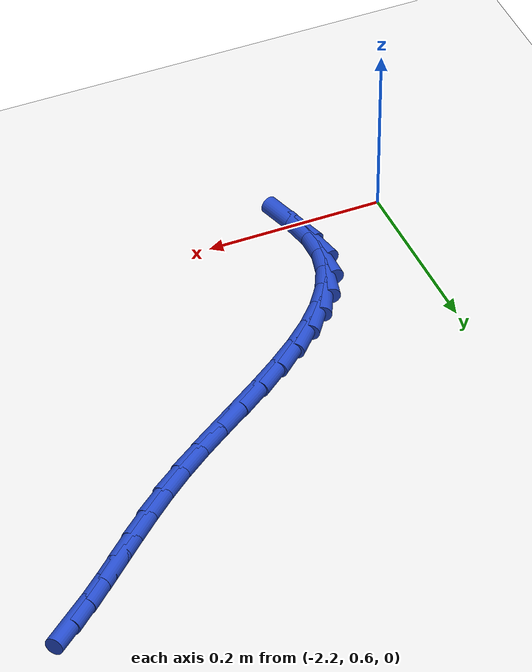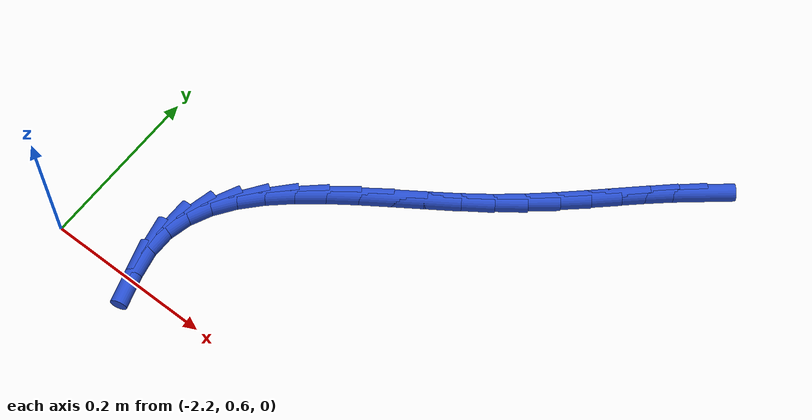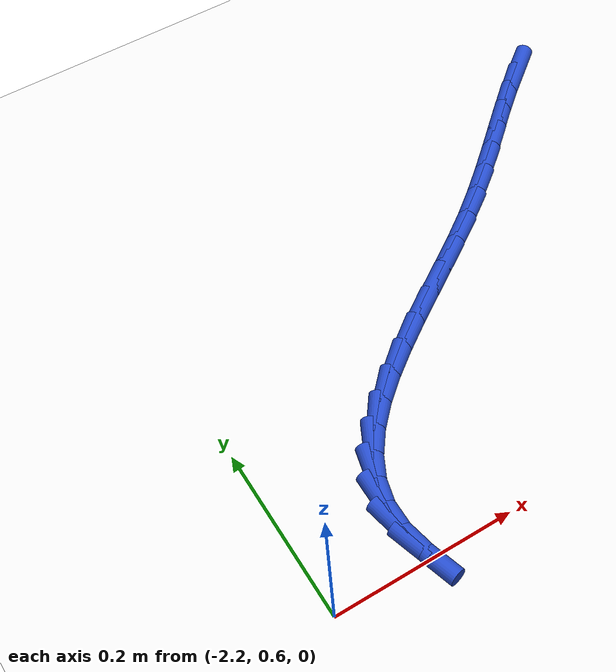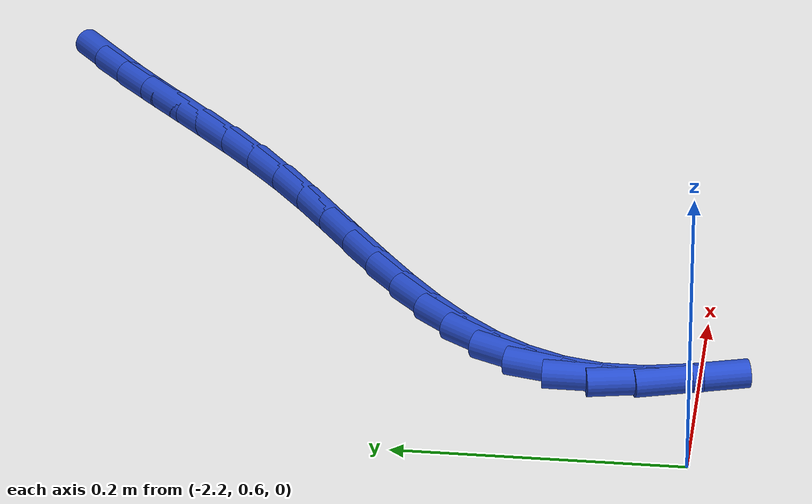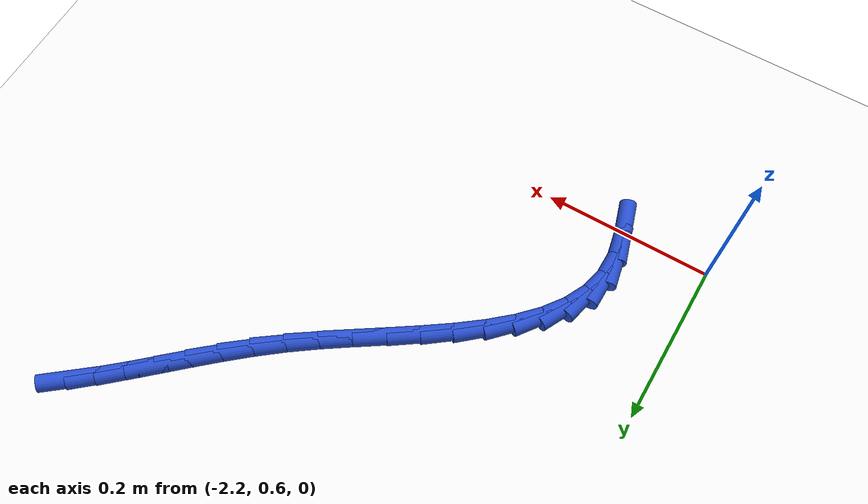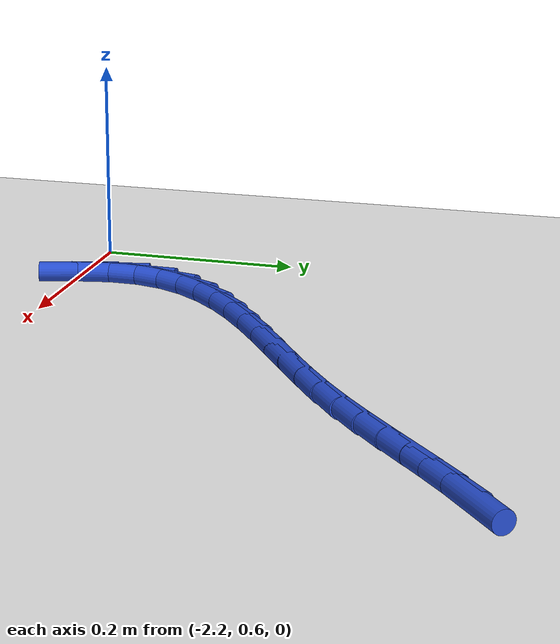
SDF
<sdf version="1.6">
 <world name="default">
  <model name="ground_plane">
   <static>1</static>
   <link name="link">
    <collision name="collision">
     <geometry><plane><normal>0 0 1</normal><size>100 100</size></plane></geometry>
     <surface><friction><ode><mu>100</mu><mu2>50</mu2></ode></friction></surface>
    </collision>
    <visual name="visual">
     <cast_shadows>0</cast_shadows>
     <geometry><plane><normal>0 0 1</normal><size>100 100</size></plane></geometry>
     <material>
      <script><uri>file://media/materials/scripts/gazebo.material</uri><name>Gazebo/WhiteGlow</name></script>
     </material>
    </visual>
   </link>
  </model>
  <model name="line">
   <link name="link_80">
    <pose>-1.65694661246185 1.07331122320994 0.01 0 1.57 0.680623803004864</pose>
    <collision name="collision">
     <geometry><cylinder><radius>0.01</radius><length>0.08</length></cylinder></geometry>
    </collision>
    <visual name="visual">
     <material>
      <script><name>Gazebo/Blue</name><uri>file://media/materials/scripts/gazebo.material</uri></script>
     </material>
     <geometry><cylinder><radius>0.01</radius><length>0.08</length></cylinder></geometry>
    </visual>
   </link>
   <link name="link_81">
    <pose>-1.6812501632050776 1.053632793120384 0.01 0 1.57 0.7168973606551147</pose>
    <collision name="collision">
     <geometry><cylinder><radius>0.01</radius><length>0.08</length></cylinder></geometry>
    </collision>
    <visual name="visual">
     <material>
      <script><name>Gazebo/Blue</name><uri>file://media/materials/scripts/gazebo.material</uri></script>
     </material>
     <geometry><cylinder><radius>0.01</radius><length>0.08</length></cylinder></geometry>
    </visual>
   </link>
   <link name="link_82">
    <pose>-1.7053035607349547 1.0326680096049548 0.01 0 1.57 0.7370292278490008</pose>
    <collision name="collision">
     <geometry><cylinder><radius>0.01</radius><length>0.08</length></cylinder></geometry>
    </collision>
    <visual name="visual">
     <material>
      <script><name>Gazebo/Blue</name><uri>file://media/materials/scripts/gazebo.material</uri></script>
     </material>
     <geometry><cylinder><radius>0.01</radius><length>0.08</length></cylinder></geometry>
    </visual>
   </link>
   <link name="link_83">
    <pose>-1.7294626831557167 1.0107398214093875 0.01 0 1.57 0.7419394512219598</pose>
    <collision name="collision">
     <geometry><cylinder><radius>0.01</radius><length>0.08</length></cylinder></geometry>
    </collision>
    <visual name="visual">
     <material>
      <script><name>Gazebo/Blue</name><uri>file://media/materials/scripts/gazebo.material</uri></script>
     </material>
     <geometry><cylinder><radius>0.01</radius><length>0.08</length></cylinder></geometry>
    </visual>
   </link>
   <link name="link_84">
    <pose>-1.7540834085715986 0.988171177279418 0.01 0 1.57 0.7326362289257992</pose>
    <collision name="collision">
     <geometry><cylinder><radius>0.01</radius><length>0.08</length></cylinder></geometry>
    </collision>
    <visual name="visual">
     <material>
      <script><name>Gazebo/Blue</name><uri>file://media/materials/scripts/gazebo.material</uri></script>
     </material>
     <geometry><cylinder><radius>0.01</radius><length>0.08</length></cylinder></geometry>
    </visual>
   </link>
   <link name="link_85">
    <pose>-1.7795216150868376 0.9652850259607826 0.01 0 1.57 0.7101578756560705</pose>
    <collision name="collision">
     <geometry><cylinder><radius>0.01</radius><length>0.08</length></cylinder></geometry>
    </collision>
    <visual name="visual">
     <material>
      <script><name>Gazebo/Blue</name><uri>file://media/materials/scripts/gazebo.material</uri></script>
     </material>
     <geometry><cylinder><radius>0.01</radius><length>0.08</length></cylinder></geometry>
    </visual>
   </link>
   <link name="link_86">
    <pose>-1.8061331808056669 0.9424043161992168 0.01 0 1.57 0.6756000748261549</pose>
    <collision name="collision">
     <geometry><cylinder><radius>0.01</radius><length>0.08</length></cylinder></geometry>
    </collision>
    <visual name="visual">
     <material>
      <script><name>Gazebo/Blue</name><uri>file://media/materials/scripts/gazebo.material</uri></script>
     </material>
     <geometry><cylinder><radius>0.01</radius><length>0.08</length></cylinder></geometry>
    </visual>
   </link>
   <link name="link_87">
    <pose>-1.8342739838323234 0.9198519967404569 0.01 0 1.57 0.6336502863869227</pose>
    <collision name="collision">
     <geometry><cylinder><radius>0.01</radius><length>0.08</length></cylinder></geometry>
    </collision>
    <visual name="visual">
     <material>
      <script><name>Gazebo/Blue</name><uri>file://media/materials/scripts/gazebo.material</uri></script>
     </material>
     <geometry><cylinder><radius>0.01</radius><length>0.08</length></cylinder></geometry>
    </visual>
   </link>
   <link name="link_88">
    <pose>-1.8641692843395268 0.8978873071239974 0.01 0 1.57 0.604044374921689</pose>
    <collision name="collision">
     <geometry><cylinder><radius>0.01</radius><length>0.08</length></cylinder></geometry>
    </collision>
    <visual name="visual">
     <material>
      <script><name>Gazebo/Blue</name><uri>file://media/materials/scripts/gazebo.material</uri></script>
     </material>
     <geometry><cylinder><radius>0.01</radius><length>0.08</length></cylinder></geometry>
    </visual>
   </link>
   <link name="link_89">
    <pose>-1.8952981829738225 0.8764055458087319 0.01 0 1.57 0.5919644068887063</pose>
    <collision name="collision">
     <geometry><cylinder><radius>0.01</radius><length>0.08</length></cylinder></geometry>
    </collision>
    <visual name="visual">
     <material>
      <script><name>Gazebo/Blue</name><uri>file://media/materials/scripts/gazebo.material</uri></script>
     </material>
     <geometry><cylinder><radius>0.01</radius><length>0.08</length></cylinder></geometry>
    </visual>
   </link>
   <link name="link_90">
    <pose>-1.9268752493928818 0.8551729856356188 0.01 0 1.57 0.5966157131276605</pose>
    <collision name="collision">
     <geometry><cylinder><radius>0.01</radius><length>0.08</length></cylinder></geometry>
    </collision>
    <visual name="visual">
     <material>
      <script><name>Gazebo/Blue</name><uri>file://media/materials/scripts/gazebo.material</uri></script>
     </material>
     <geometry><cylinder><radius>0.01</radius><length>0.08</length></cylinder></geometry>
    </visual>
   </link>
   <link name="link_91">
    <pose>-1.9581147418534521 0.8339557475590753 0.01 0 1.57 0.6185817780867316</pose>
    <collision name="collision">
     <geometry><cylinder><radius>0.01</radius><length>0.08</length></cylinder></geometry>
    </collision>
    <visual name="visual">
     <material>
      <script><name>Gazebo/Blue</name><uri>file://media/materials/scripts/gazebo.material</uri></script>
     </material>
     <geometry><cylinder><radius>0.01</radius><length>0.08</length></cylinder></geometry>
    </visual>
   </link>
   <link name="link_92">
    <pose>-1.9882309186122786 0.8125199525335178 0.01 0 1.57 0.6599236003829672</pose>
    <collision name="collision">
     <geometry><cylinder><radius>0.01</radius><length>0.08</length></cylinder></geometry>
    </collision>
    <visual name="visual">
     <material>
      <script><name>Gazebo/Blue</name><uri>file://media/materials/scripts/gazebo.material</uri></script>
     </material>
     <geometry><cylinder><radius>0.01</radius><length>0.08</length></cylinder></geometry>
    </visual>
   </link>
   <link name="link_93">
    <pose>-2.016438037926107 0.7906317215133636 0.01 0 1.57 0.7243809353038799</pose>
    <collision name="collision">
     <geometry><cylinder><radius>0.01</radius><length>0.08</length></cylinder></geometry>
    </collision>
    <visual name="visual">
     <material>
      <script><name>Gazebo/Blue</name><uri>file://media/materials/scripts/gazebo.material</uri></script>
     </material>
     <geometry><cylinder><radius>0.01</radius><length>0.08</length></cylinder></geometry>
    </visual>
   </link>
   <link name="link_94">
    <pose>-2.0419503580516847 0.7680571754530302 0.01 0 1.57 0.8175213682603663</pose>
    <collision name="collision">
     <geometry><cylinder><radius>0.01</radius><length>0.08</length></cylinder></geometry>
    </collision>
    <visual name="visual">
     <material>
      <script><name>Gazebo/Blue</name><uri>file://media/materials/scripts/gazebo.material</uri></script>
     </material>
     <geometry><cylinder><radius>0.01</radius><length>0.08</length></cylinder></geometry>
    </visual>
   </link>
   <link name="link_95">
    <pose>-2.0639821372457563 0.744562435306934 0.01 0 1.57 0.946283130324248</pose>
    <collision name="collision">
     <geometry><cylinder><radius>0.01</radius><length>0.08</length></cylinder></geometry>
    </collision>
    <visual name="visual">
     <material>
      <script><name>Gazebo/Blue</name><uri>file://media/materials/scripts/gazebo.material</uri></script>
     </material>
     <geometry><cylinder><radius>0.01</radius><length>0.08</length></cylinder></geometry>
    </visual>
   </link>
   <link name="link_96">
    <pose>-2.081747633765069 0.7199136220294924 0.01 0 1.57 1.1165611495246377</pose>
    <collision name="collision">
     <geometry><cylinder><radius>0.01</radius><length>0.08</length></cylinder></geometry>
    </collision>
    <visual name="visual">
     <material>
      <script><name>Gazebo/Blue</name><uri>file://media/materials/scripts/gazebo.material</uri></script>
     </material>
     <geometry><cylinder><radius>0.01</radius><length>0.08</length></cylinder></geometry>
    </visual>
   </link>
   <link name="link_97">
    <pose>-2.094461105866367 0.6938768565751223 0.01 0 1.57 1.3271432759792712</pose>
    <collision name="collision">
     <geometry><cylinder><radius>0.01</radius><length>0.08</length></cylinder></geometry>
    </collision>
    <visual name="visual">
     <material>
      <script><name>Gazebo/Blue</name><uri>file://media/materials/scripts/gazebo.material</uri></script>
     </material>
     <geometry><cylinder><radius>0.01</radius><length>0.08</length></cylinder></geometry>
    </visual>
   </link>
   <link name="link_98">
    <pose>-2.1013368118063993 0.6662182598982413 0.01 0 1.57 1.5622490132049547</pose>
    <collision name="collision">
     <geometry><cylinder><radius>0.01</radius><length>0.08</length></cylinder></geometry>
    </collision>
    <visual name="visual">
     <material>
      <script><name>Gazebo/Blue</name><uri>file://media/materials/scripts/gazebo.material</uri></script>
     </material>
     <geometry><cylinder><radius>0.01</radius><length>0.08</length></cylinder></geometry>
    </visual>
   </link>
   <link name="link_99">
    <pose>-2.101589085817184 0.6367039727861838 0.01 0 1.57 -1.373259853972286</pose>
    <collision name="collision">
     <geometry><cylinder><radius>0.01</radius><length>0.08</length></cylinder></geometry>
    </collision>
    <visual name="visual">
     <material>
      <script><name>Gazebo/Blue</name><uri>file://media/materials/scripts/gazebo.material</uri></script>
     </material>
     <geometry><cylinder><radius>0.01</radius><length>0.08</length></cylinder></geometry>
    </visual>
   </link>
   <link name="link_100">
    <pose>-2.095309521071636 0.6053291395358416 0.01 0 1.57 -1.2812658636878353</pose>
    <collision name="collision">
     <geometry><cylinder><radius>0.01</radius><length>0.08</length></cylinder></geometry>
    </collision>
    <visual name="visual">
     <material>
      <script><name>Gazebo/Blue</name><uri>file://media/materials/scripts/gazebo.material</uri></script>
     </material>
     <geometry><cylinder><radius>0.01</radius><length>0.08</length></cylinder></geometry>
    </visual>
   </link>
  </model>
 </world>
</sdf>
